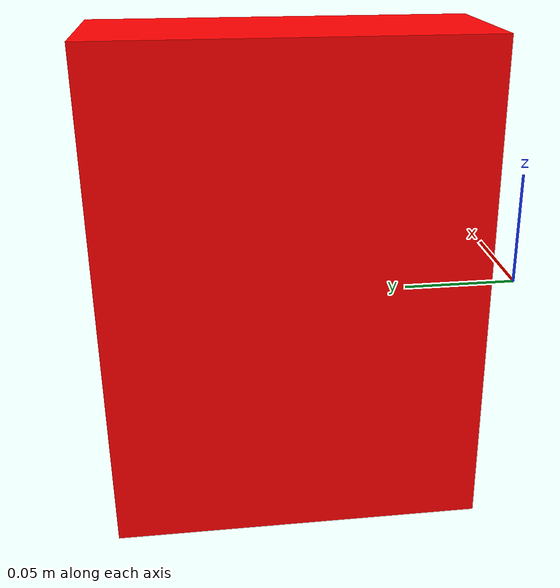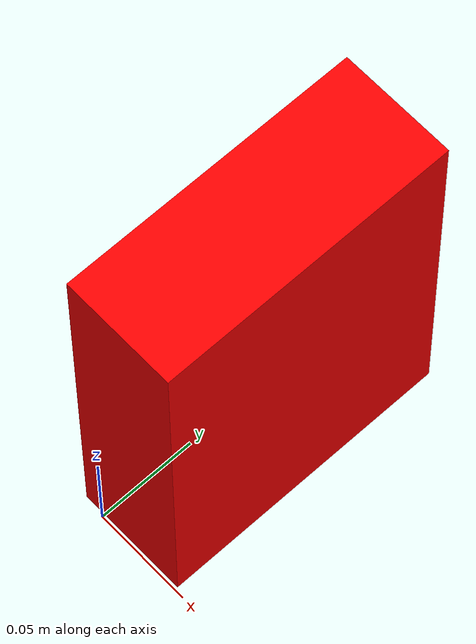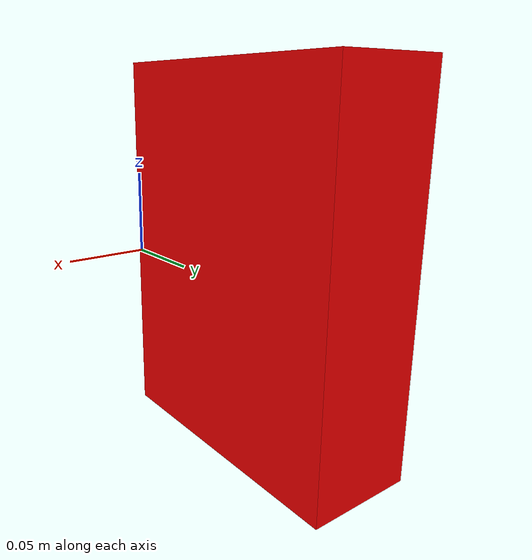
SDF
<?xml version="1.0"?>
<sdf version="1.7">
  <model name="003_cracker_box">
    <link name="base_box">
      <inertial>
        <mass>0.411</mass>
        <inertia>
          <ixx>0.001736</ixx>
          <ixy>0</ixy>
          <ixz>0</ixz>
          <iyy>0.001098</iyy>
          <iyz>0</iyz>
          <izz>0.002481</izz>
        </inertia>
      </inertial>
      <visual name="base_box">
        <pose>-0.014 0.103 0.013 1.57 -1.57 0</pose>
        <geometry>
            <box>
            <size>0.205 0.06 0.154</size>
            </box>
        </geometry>
        <material>
          <diffuse>1 0.0 0.0 1.0</diffuse>
        </material>
      </visual>
      <collision name="box_collision">
        <geometry>
          <box>
            <size>0.158000 0.207400 0.065800</size>
          </box>
        </geometry>
      </collision>
      <collision name="point_collision1">
        <pose>0.079500 0.104200 0.033400 0 0 0 </pose>
        <geometry>
          <sphere>
            <radius>1e-7</radius>
          </sphere>
        </geometry>
      </collision>
      <collision name="point_collision2">
        <pose>0.079500 -0.104200 0.033400 0 0 0 </pose>
        <geometry>
          <sphere>
            <radius>1e-7</radius>
          </sphere>
        </geometry>
      </collision>
      <collision name="point_collision3">
        <pose>-0.079500 0.104200 0.033400 0 0 0 </pose>
        <geometry>
          <sphere>
            <radius>1e-7</radius>
          </sphere>
        </geometry>
      </collision>
      <collision name="point_collision4">
        <pose>-0.079500 -0.104200 0.033400 0 0 0 </pose>
        <geometry>
          <sphere>
            <radius>1e-7</radius>
          </sphere>
        </geometry>
      </collision>
      <collision name="point_collision5">
        <pose>0.079500 0.104200 -0.033400 0 0 0 </pose>
        <geometry>
          <sphere>
            <radius>1e-7</radius>
          </sphere>
        </geometry>
      </collision>
      <collision name="point_collision6">
        <pose>0.079500 -0.104200 -0.033400 0 0 0 </pose>
        <geometry>
          <sphere>
            <radius>1e-7</radius>
          </sphere>
        </geometry>
      </collision>
      <collision name="point_collision7">
        <pose>-0.079500 0.104200 -0.033400 0 0 0 </pose>
        <geometry>
          <sphere>
            <radius>1e-7</radius>
          </sphere>
        </geometry>
      </collision>
      <collision name="point_collision8">
        <pose>-0.079500 -0.104200 -0.033400 0 0 0 </pose>
        <geometry>
          <sphere>
            <radius>1e-7</radius>
          </sphere>
        </geometry>
      </collision>
    </link>
  </model>
</sdf>
